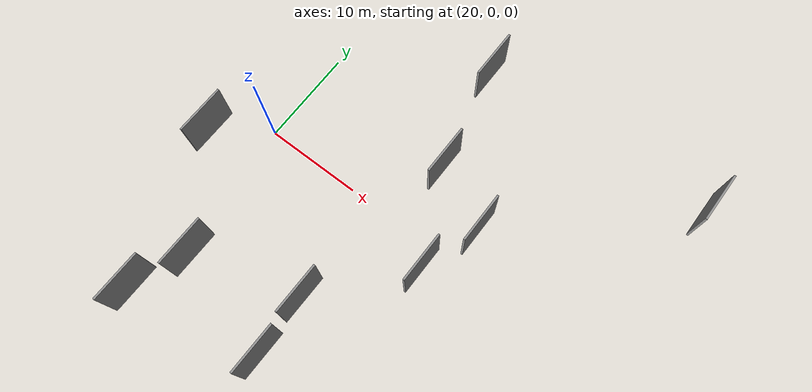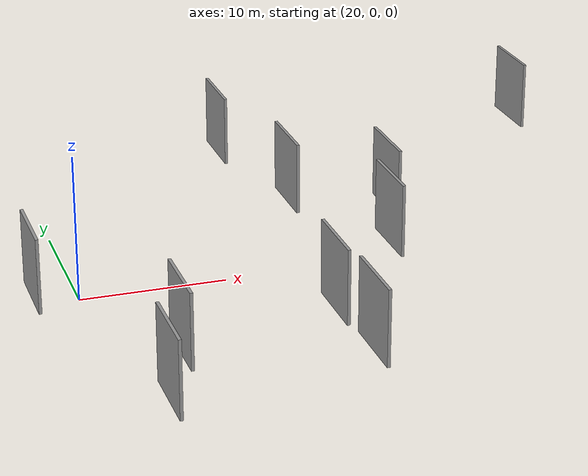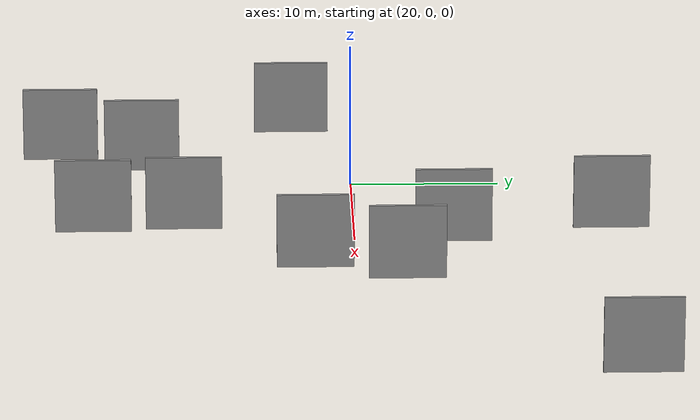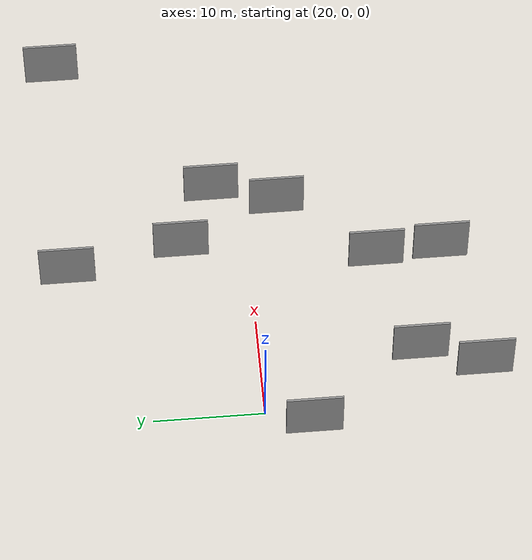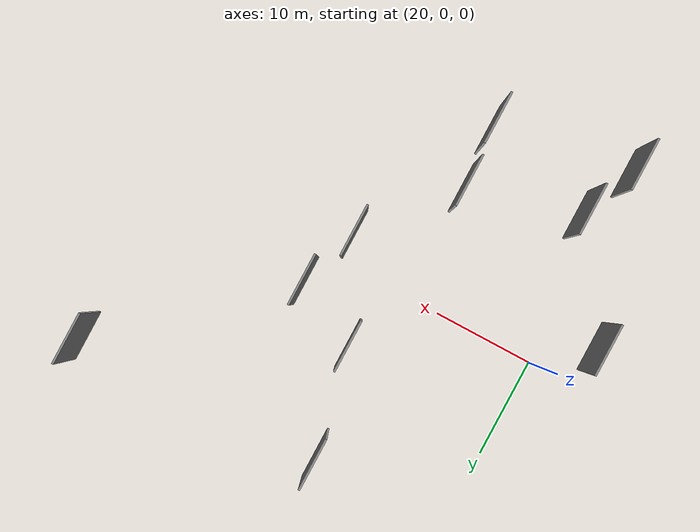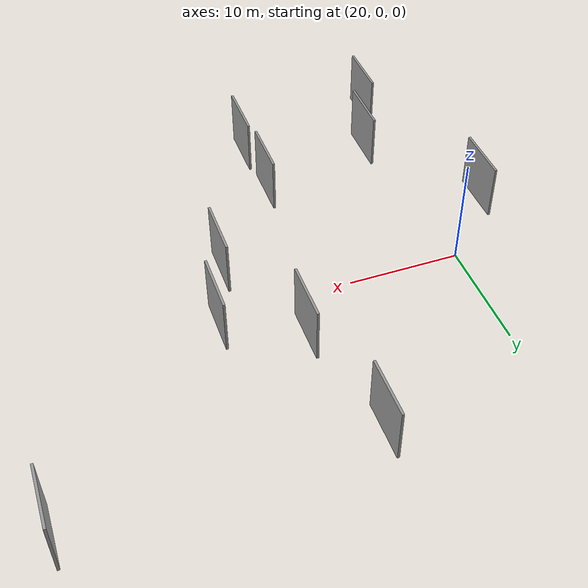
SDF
<sdf version="1.6">
 <world name="default">
  <scene>
   <sky><clouds><speed>12</speed></clouds></sky>
   <ambient>0.4 0.4 0.4 1</ambient>
   <background>0.7 0.7 0.7 1</background>
   <shadows>1</shadows>
  </scene>
  <gravity>0 0 -9.8066</gravity>
  <magnetic_field>6e-06 2.3e-05 -4.2e-05</magnetic_field>
  <physics default="0" name="default_physics" type="ode">
   <ode>
    <solver>
     <type>quick</type>
     <iters>10</iters>
     <sor>1.0</sor>
     <use_dynamic_moi_rescaling>0</use_dynamic_moi_rescaling>
    </solver>
    <constraints>
     <cfm>0</cfm>
     <erp>0.2</erp>
     <contact_max_correcting_vel>100</contact_max_correcting_vel>
     <contact_surface_layer>0.001</contact_surface_layer>
    </constraints>
   </ode>
   <max_step_size>0.004</max_step_size>
   <real_time_factor>1</real_time_factor>
   <real_time_update_rate>250</real_time_update_rate>
  </physics>
  <light name="sun" type="directional">
   <pose>0 0 10 0 0 0</pose>
   <diffuse>0.8 0.8 0.8 1</diffuse>
   <specular>0.2 0.2 0.2 1</specular>
   <attenuation>
    <range>1000</range>
    <constant>0.9</constant>
    <linear>0.01</linear>
    <quadratic>0.001</quadratic>
   </attenuation>
   <direction>-0.5 0.1 -0.9</direction>
  </light>
  <model name="grey_wall_1">
   <static>1</static>
   <pose>42.5457 3.1246 2.5 0.000000 0.000000 1.570796</pose>
   <link name="link">
    <pose>0 0 2.50 0 0 0</pose>
    <collision name="collision"><geometry><box><size>5.00 0.2 5.00</size></box></geometry></collision>
    <visual name="visual">
     <cast_shadows>0</cast_shadows>
     <geometry><box><size>5.00 0.2 5.00</size></box></geometry>
     <material>
      <script>
       <uri>model://grey_wall/materials/scripts</uri>
       <uri>model://grey_wall/materials/textures</uri>
       <name>vrc/grey_wall</name>
      </script>
     </material>
    </visual>
   </link>
  </model>
  <model name="grey_wall_2">
   <static>1</static>
   <pose>34.1864 -17.1989 2.5 0.000000 0.000000 1.570796</pose>
   <link name="link">
    <pose>0 0 2.50 0 0 0</pose>
    <collision name="collision"><geometry><box><size>5.00 0.2 5.00</size></box></geometry></collision>
    <visual name="visual">
     <cast_shadows>0</cast_shadows>
     <geometry><box><size>5.00 0.2 5.00</size></box></geometry>
     <material>
      <script>
       <uri>model://grey_wall/materials/scripts</uri>
       <uri>model://grey_wall/materials/textures</uri>
       <name>vrc/grey_wall</name>
      </script>
     </material>
    </visual>
   </link>
  </model>
  <model name="grey_wall_3">
   <static>1</static>
   <pose>16.2994 -3.9946 2.5 0.000000 0.000000 1.570796</pose>
   <link name="link">
    <pose>0 0 2.50 0 0 0</pose>
    <collision name="collision"><geometry><box><size>5.00 0.2 5.00</size></box></geometry></collision>
    <visual name="visual">
     <cast_shadows>0</cast_shadows>
     <geometry><box><size>5.00 0.2 5.00</size></box></geometry>
     <material>
      <script>
       <uri>model://grey_wall/materials/scripts</uri>
       <uri>model://grey_wall/materials/textures</uri>
       <name>vrc/grey_wall</name>
      </script>
     </material>
    </visual>
   </link>
  </model>
  <model name="grey_wall_4">
   <static>1</static>
   <pose>40.5666 -2.7654 2.5 0.000000 0.000000 1.570796</pose>
   <link name="link">
    <pose>0 0 2.50 0 0 0</pose>
    <collision name="collision"><geometry><box><size>5.00 0.2 5.00</size></box></geometry></collision>
    <visual name="visual">
     <cast_shadows>0</cast_shadows>
     <geometry><box><size>5.00 0.2 5.00</size></box></geometry>
     <material>
      <script>
       <uri>model://grey_wall/materials/scripts</uri>
       <uri>model://grey_wall/materials/textures</uri>
       <name>vrc/grey_wall</name>
      </script>
     </material>
    </visual>
   </link>
  </model>
  <model name="grey_wall_5">
   <static>1</static>
   <pose>34.1694 16.7653 2.5 0.000000 0.000000 1.570796</pose>
   <link name="link">
    <pose>0 0 2.50 0 0 0</pose>
    <collision name="collision"><geometry><box><size>5.00 0.2 5.00</size></box></geometry></collision>
    <visual name="visual">
     <cast_shadows>0</cast_shadows>
     <geometry><box><size>5.00 0.2 5.00</size></box></geometry>
     <material>
      <script>
       <uri>model://grey_wall/materials/scripts</uri>
       <uri>model://grey_wall/materials/textures</uri>
       <name>vrc/grey_wall</name>
      </script>
     </material>
    </visual>
   </link>
  </model>
  <model name="grey_wall_6">
   <static>1</static>
   <pose>33.8187 -11.2666 2.5 0.000000 0.000000 1.570796</pose>
   <link name="link">
    <pose>0 0 2.50 0 0 0</pose>
    <collision name="collision"><geometry><box><size>5.00 0.2 5.00</size></box></geometry></collision>
    <visual name="visual">
     <cast_shadows>0</cast_shadows>
     <geometry><box><size>5.00 0.2 5.00</size></box></geometry>
     <material>
      <script>
       <uri>model://grey_wall/materials/scripts</uri>
       <uri>model://grey_wall/materials/textures</uri>
       <name>vrc/grey_wall</name>
      </script>
     </material>
    </visual>
   </link>
  </model>
  <model name="grey_wall_7">
   <static>1</static>
   <pose>21.1155 -19.6228 2.5 0.000000 0.000000 1.570796</pose>
   <link name="link">
    <pose>0 0 2.50 0 0 0</pose>
    <collision name="collision"><geometry><box><size>5.00 0.2 5.00</size></box></geometry></collision>
    <visual name="visual">
     <cast_shadows>0</cast_shadows>
     <geometry><box><size>5.00 0.2 5.00</size></box></geometry>
     <material>
      <script>
       <uri>model://grey_wall/materials/scripts</uri>
       <uri>model://grey_wall/materials/textures</uri>
       <name>vrc/grey_wall</name>
      </script>
     </material>
    </visual>
   </link>
  </model>
  <model name="grey_wall_8">
   <static>1</static>
   <pose>58.0321 17.1980 2.5 0.000000 0.000000 1.570796</pose>
   <link name="link">
    <pose>0 0 2.50 0 0 0</pose>
    <collision name="collision"><geometry><box><size>5.00 0.2 5.00</size></box></geometry></collision>
    <visual name="visual">
     <cast_shadows>0</cast_shadows>
     <geometry><box><size>5.00 0.2 5.00</size></box></geometry>
     <material>
      <script>
       <uri>model://grey_wall/materials/scripts</uri>
       <uri>model://grey_wall/materials/textures</uri>
       <name>vrc/grey_wall</name>
      </script>
     </material>
    </visual>
   </link>
  </model>
  <model name="grey_wall_9">
   <static>1</static>
   <pose>36.3087 6.3308 2.5 0.000000 0.000000 1.570796</pose>
   <link name="link">
    <pose>0 0 2.50 0 0 0</pose>
    <collision name="collision"><geometry><box><size>5.00 0.2 5.00</size></box></geometry></collision>
    <visual name="visual">
     <cast_shadows>0</cast_shadows>
     <geometry><box><size>5.00 0.2 5.00</size></box></geometry>
     <material>
      <script>
       <uri>model://grey_wall/materials/scripts</uri>
       <uri>model://grey_wall/materials/textures</uri>
       <name>vrc/grey_wall</name>
      </script>
     </material>
    </visual>
   </link>
  </model>
  <model name="grey_wall_10">
   <static>1</static>
   <pose>23.2478 -14.1200 2.5 0.000000 0.000000 1.570796</pose>
   <link name="link">
    <pose>0 0 2.50 0 0 0</pose>
    <collision name="collision"><geometry><box><size>5.00 0.2 5.00</size></box></geometry></collision>
    <visual name="visual">
     <cast_shadows>0</cast_shadows>
     <geometry><box><size>5.00 0.2 5.00</size></box></geometry>
     <material>
      <script>
       <uri>model://grey_wall/materials/scripts</uri>
       <uri>model://grey_wall/materials/textures</uri>
       <name>vrc/grey_wall</name>
      </script>
     </material>
    </visual>
   </link>
  </model>
 </world>
</sdf>
